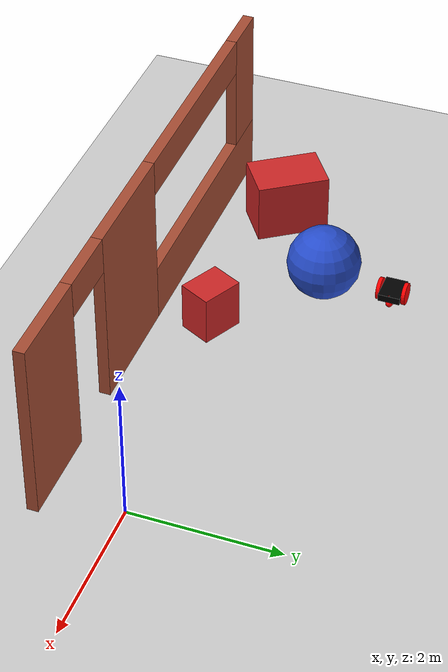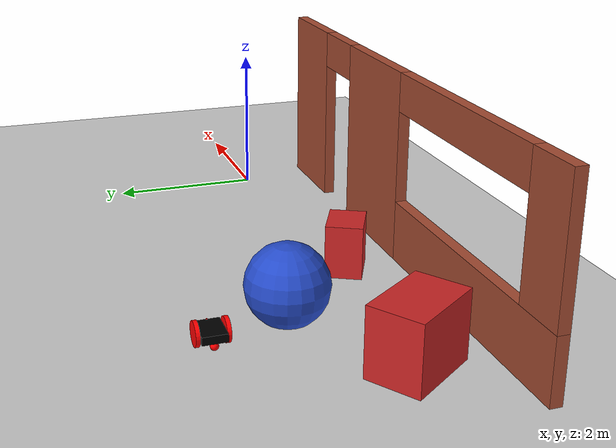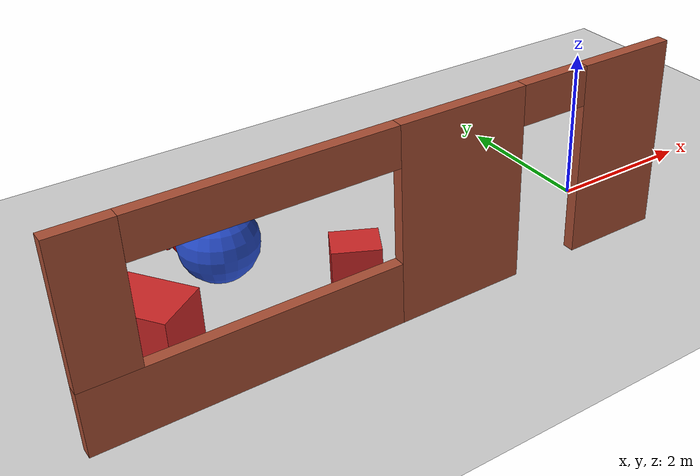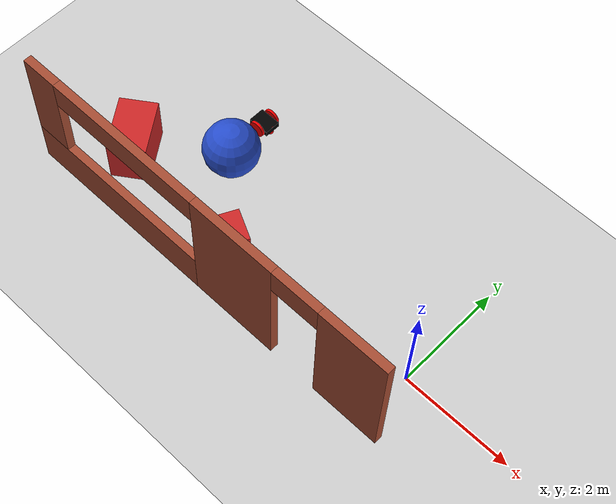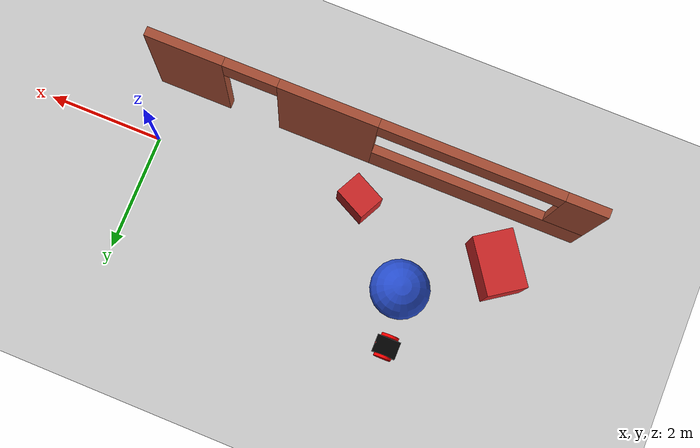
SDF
<sdf version="1.6">
 <world name="default">
  <model name="ground_plane">
   <static>1</static>
   <link name="link">
    <collision name="collision">
     <geometry><plane><normal>0 0 1</normal><size>100 100</size></plane></geometry>
     <surface>
      <contact><collide_bitmask>65535</collide_bitmask></contact>
      <friction><ode><mu>100</mu><mu2>50</mu2></ode></friction>
     </surface>
    </collision>
    <visual name="visual">
     <cast_shadows>0</cast_shadows>
     <geometry><plane><normal>0 0 1</normal><size>100 100</size></plane></geometry>
     <material>
      <script><uri>file://media/materials/scripts/gazebo.material</uri><name>Gazebo/Grey</name></script>
     </material>
    </visual>
   </link>
  </model>
  <model name="AssignmentBuilding_0">
   <link name="Wall_50">
    <pose>-2.70755 -0.616637 0 0 0 -3.14151</pose>
    <inertial>
     <mass>1</mass>
     <inertia><ixx>1</ixx><ixy>0</ixy><ixz>0</ixz><iyy>1</iyy><iyz>0</iyz><izz>1</izz></inertia>
    </inertial>
    <visual name="Wall_50_Visual_0">
     <pose>-3.10542 0 1.25 0 -0 0</pose>
     <geometry><box><size>1.28752 0.15 2.5</size></box></geometry>
     <material>
      <script><uri>file://media/materials/scripts/gazebo.material</uri><name>Gazebo/Bricks</name></script>
      <ambient>1 1 1 1</ambient>
      <shader type="pixel"><normal_map>__default__</normal_map></shader>
      <diffuse>1 1 1 1</diffuse>
      <specular>0.2 0.2 0.2 1</specular>
      <emissive>0 0 0 1</emissive>
     </material>
     <meta><layer>0</layer></meta>
    </visual>
    <visual name="Wall_50_Visual_1">
     <pose>-0.739689 0 1.25 0 -0 0</pose>
     <geometry><box><size>1.64394 0.15 2.5</size></box></geometry>
     <material>
      <script><uri>file://media/materials/scripts/gazebo.material</uri><name>Gazebo/Bricks</name></script>
      <ambient>1 1 1 1</ambient>
      <shader type="pixel"><normal_map>__default__</normal_map></shader>
      <diffuse>0.7 0.7 0.7 1</diffuse>
      <specular>0.01 0.01 0.01 1</specular>
      <emissive>0 0 0 1</emissive>
     </material>
     <meta><layer>0</layer></meta>
    </visual>
    <visual name="Wall_50_Visual_2">
     <pose>1.91573 0 0.4 0 -0 0</pose>
     <geometry><box><size>3.6669 0.15 0.8</size></box></geometry>
     <material>
      <script><uri>file://media/materials/scripts/gazebo.material</uri><name>Gazebo/Bricks</name></script>
      <ambient>1 1 1 1</ambient>
      <shader type="pixel"><normal_map>__default__</normal_map></shader>
      <diffuse>0.7 0.7 0.7 1</diffuse>
      <specular>0.01 0.01 0.01 1</specular>
      <emissive>0 0 0 1</emissive>
     </material>
     <meta><layer>0</layer></meta>
    </visual>
    <visual name="Wall_50_Visual_3">
     <pose>3.40754 0 1.65 0 -0 0</pose>
     <geometry><box><size>0.683277 0.15 1.7</size></box></geometry>
     <material>
      <script><uri>file://media/materials/scripts/gazebo.material</uri><name>Gazebo/Bricks</name></script>
      <ambient>1 1 1 1</ambient>
      <shader type="pixel"><normal_map>__default__</normal_map></shader>
      <diffuse>0.7 0.7 0.7 1</diffuse>
      <specular>0.01 0.01 0.01 1</specular>
      <emissive>0 0 0 1</emissive>
     </material>
     <meta><layer>0</layer></meta>
    </visual>
    <visual name="Wall_50_Visual_4">
     <pose>-2.01166 0 2.25 0 -0 0</pose>
     <geometry><box><size>0.9 0.15 0.5</size></box></geometry>
     <material>
      <script><uri>file://media/materials/scripts/gazebo.material</uri><name>Gazebo/Bricks</name></script>
      <ambient>1 1 1 1</ambient>
      <shader type="pixel"><normal_map>__default__</normal_map></shader>
      <diffuse>0.7 0.7 0.7 1</diffuse>
      <specular>0.01 0.01 0.01 1</specular>
      <emissive>0 0 0 1</emissive>
     </material>
     <meta><layer>0</layer></meta>
    </visual>
    <visual name="Wall_50_Visual_5">
     <pose>1.57409 0 2.25 0 -0 0</pose>
     <geometry><box><size>2.98362 0.15 0.5</size></box></geometry>
     <material>
      <script><uri>file://media/materials/scripts/gazebo.material</uri><name>Gazebo/Bricks</name></script>
      <ambient>1 1 1 1</ambient>
      <shader type="pixel"><normal_map>__default__</normal_map></shader>
      <diffuse>0.7 0.7 0.7 1</diffuse>
      <specular>0.01 0.01 0.01 1</specular>
      <emissive>0 0 0 1</emissive>
     </material>
     <meta><layer>0</layer></meta>
    </visual>
    <collision name="Wall_50_Collision_0">
     <pose>-3.10542 0 1.25 0 -0 0</pose>
     <geometry><box><size>1.28752 0.15 2.5</size></box></geometry>
     <surface>
      <friction>
       <ode><mu>1</mu><mu2>1</mu2><fdir1>0 0 0</fdir1><slip1>0</slip1><slip2>0</slip2></ode>
       <torsional>
        <coefficient>1</coefficient>
        <patch_radius>0</patch_radius>
        <surface_radius>0</surface_radius>
        <use_patch_radius>1</use_patch_radius>
        <ode><slip>0</slip></ode>
       </torsional>
      </friction>
      <bounce><restitution_coefficient>0</restitution_coefficient><threshold>1e+06</threshold></bounce>
      <contact>
       <collide_without_contact>0</collide_without_contact>
       <collide_without_contact_bitmask>1</collide_without_contact_bitmask>
       <collide_bitmask>1</collide_bitmask>
       <ode>
        <soft_cfm>0</soft_cfm>
        <soft_erp>0.2</soft_erp>
        <kp>1e+13</kp>
        <kd>1</kd>
        <max_vel>0.01</max_vel>
        <min_depth>0</min_depth>
       </ode>
       <bullet>
        <split_impulse>1</split_impulse>
        <split_impulse_penetration_threshold>-0.01</split_impulse_penetration_threshold>
        <soft_cfm>0</soft_cfm>
        <soft_erp>0.2</soft_erp>
        <kp>1e+13</kp>
        <kd>1</kd>
       </bullet>
      </contact>
     </surface>
    </collision>
    <collision name="Wall_50_Collision_1">
     <pose>-0.739689 0 1.25 0 -0 0</pose>
     <geometry><box><size>1.64394 0.15 2.5</size></box></geometry>
     <surface>
      <friction>
       <ode><mu>1</mu><mu2>1</mu2><fdir1>0 0 0</fdir1><slip1>0</slip1><slip2>0</slip2></ode>
       <torsional>
        <coefficient>1</coefficient>
        <patch_radius>0</patch_radius>
        <surface_radius>0</surface_radius>
        <use_patch_radius>1</use_patch_radius>
        <ode><slip>0</slip></ode>
       </torsional>
      </friction>
      <bounce><restitution_coefficient>0</restitution_coefficient><threshold>1e+06</threshold></bounce>
      <contact>
       <collide_without_contact>0</collide_without_contact>
       <collide_without_contact_bitmask>1</collide_without_contact_bitmask>
       <collide_bitmask>1</collide_bitmask>
       <ode>
        <soft_cfm>0</soft_cfm>
        <soft_erp>0.2</soft_erp>
        <kp>1e+13</kp>
        <kd>1</kd>
        <max_vel>0.01</max_vel>
        <min_depth>0</min_depth>
       </ode>
       <bullet>
        <split_impulse>1</split_impulse>
        <split_impulse_penetration_threshold>-0.01</split_impulse_penetration_threshold>
        <soft_cfm>0</soft_cfm>
        <soft_erp>0.2</soft_erp>
        <kp>1e+13</kp>
        <kd>1</kd>
       </bullet>
      </contact>
     </surface>
    </collision>
    <collision name="Wall_50_Collision_2">
     <pose>1.91573 0 0.4 0 -0 0</pose>
     <geometry><box><size>3.6669 0.15 0.8</size></box></geometry>
     <surface>
      <friction>
       <ode><mu>1</mu><mu2>1</mu2><fdir1>0 0 0</fdir1><slip1>0</slip1><slip2>0</slip2></ode>
       <torsional>
        <coefficient>1</coefficient>
        <patch_radius>0</patch_radius>
        <surface_radius>0</surface_radius>
        <use_patch_radius>1</use_patch_radius>
        <ode><slip>0</slip></ode>
       </torsional>
      </friction>
      <bounce><restitution_coefficient>0</restitution_coefficient><threshold>1e+06</threshold></bounce>
      <contact>
       <collide_without_contact>0</collide_without_contact>
       <collide_without_contact_bitmask>1</collide_without_contact_bitmask>
       <collide_bitmask>1</collide_bitmask>
       <ode>
        <soft_cfm>0</soft_cfm>
        <soft_erp>0.2</soft_erp>
        <kp>1e+13</kp>
        <kd>1</kd>
        <max_vel>0.01</max_vel>
        <min_depth>0</min_depth>
       </ode>
       <bullet>
        <split_impulse>1</split_impulse>
        <split_impulse_penetration_threshold>-0.01</split_impulse_penetration_threshold>
        <soft_cfm>0</soft_cfm>
        <soft_erp>0.2</soft_erp>
        <kp>1e+13</kp>
        <kd>1</kd>
       </bullet>
      </contact>
     </surface>
    </collision>
    <collision name="Wall_50_Collision_3">
     <pose>3.40754 0 1.65 0 -0 0</pose>
     <geometry><box><size>0.683277 0.15 1.7</size></box></geometry>
     <surface>
      <friction>
       <ode><mu>1</mu><mu2>1</mu2><fdir1>0 0 0</fdir1><slip1>0</slip1><slip2>0</slip2></ode>
       <torsional>
        <coefficient>1</coefficient>
        <patch_radius>0</patch_radius>
        <surface_radius>0</surface_radius>
        <use_patch_radius>1</use_patch_radius>
        <ode><slip>0</slip></ode>
       </torsional>
      </friction>
      <bounce><restitution_coefficient>0</restitution_coefficient><threshold>1e+06</threshold></bounce>
      <contact>
       <collide_without_contact>0</collide_without_contact>
       <collide_without_contact_bitmask>1</collide_without_contact_bitmask>
       <collide_bitmask>1</collide_bitmask>
       <ode>
        <soft_cfm>0</soft_cfm>
        <soft_erp>0.2</soft_erp>
        <kp>1e+13</kp>
        <kd>1</kd>
        <max_vel>0.01</max_vel>
        <min_depth>0</min_depth>
       </ode>
       <bullet>
        <split_impulse>1</split_impulse>
        <split_impulse_penetration_threshold>-0.01</split_impulse_penetration_threshold>
        <soft_cfm>0</soft_cfm>
        <soft_erp>0.2</soft_erp>
        <kp>1e+13</kp>
        <kd>1</kd>
       </bullet>
      </contact>
     </surface>
    </collision>
    <collision name="Wall_50_Collision_4">
     <pose>-2.01166 0 2.25 0 -0 0</pose>
     <geometry><box><size>0.9 0.15 0.5</size></box></geometry>
     <surface>
      <friction>
       <ode><mu>1</mu><mu2>1</mu2><fdir1>0 0 0</fdir1><slip1>0</slip1><slip2>0</slip2></ode>
       <torsional>
        <coefficient>1</coefficient>
        <patch_radius>0</patch_radius>
        <surface_radius>0</surface_radius>
        <use_patch_radius>1</use_patch_radius>
        <ode><slip>0</slip></ode>
       </torsional>
      </friction>
      <bounce><restitution_coefficient>0</restitution_coefficient><threshold>1e+06</threshold></bounce>
      <contact>
       <collide_without_contact>0</collide_without_contact>
       <collide_without_contact_bitmask>1</collide_without_contact_bitmask>
       <collide_bitmask>1</collide_bitmask>
       <ode>
        <soft_cfm>0</soft_cfm>
        <soft_erp>0.2</soft_erp>
        <kp>1e+13</kp>
        <kd>1</kd>
        <max_vel>0.01</max_vel>
        <min_depth>0</min_depth>
       </ode>
       <bullet>
        <split_impulse>1</split_impulse>
        <split_impulse_penetration_threshold>-0.01</split_impulse_penetration_threshold>
        <soft_cfm>0</soft_cfm>
        <soft_erp>0.2</soft_erp>
        <kp>1e+13</kp>
        <kd>1</kd>
       </bullet>
      </contact>
     </surface>
    </collision>
    <collision name="Wall_50_Collision_5">
     <pose>1.57409 0 2.25 0 -0 0</pose>
     <geometry><box><size>2.98362 0.15 0.5</size></box></geometry>
     <surface>
      <friction>
       <ode><mu>1</mu><mu2>1</mu2><fdir1>0 0 0</fdir1><slip1>0</slip1><slip2>0</slip2></ode>
       <torsional>
        <coefficient>1</coefficient>
        <patch_radius>0</patch_radius>
        <surface_radius>0</surface_radius>
        <use_patch_radius>1</use_patch_radius>
        <ode><slip>0</slip></ode>
       </torsional>
      </friction>
      <bounce><restitution_coefficient>0</restitution_coefficient><threshold>1e+06</threshold></bounce>
      <contact>
       <collide_without_contact>0</collide_without_contact>
       <collide_without_contact_bitmask>1</collide_without_contact_bitmask>
       <collide_bitmask>1</collide_bitmask>
       <ode>
        <soft_cfm>0</soft_cfm>
        <soft_erp>0.2</soft_erp>
        <kp>1e+13</kp>
        <kd>1</kd>
        <max_vel>0.01</max_vel>
        <min_depth>0</min_depth>
       </ode>
       <bullet>
        <split_impulse>1</split_impulse>
        <split_impulse_penetration_threshold>-0.01</split_impulse_penetration_threshold>
        <soft_cfm>0</soft_cfm>
        <soft_erp>0.2</soft_erp>
        <kp>1e+13</kp>
        <kd>1</kd>
       </bullet>
      </contact>
     </surface>
    </collision>
   </link>
   <static>1</static>
   <pose>-0.68157 -0.42903 0 0 -0 0</pose>
  </model>
  <model name="unit_box">
   <link name="link">
    <inertial>
     <mass>1</mass>
     <inertia>
      <ixx>0.166667</ixx>
      <ixy>0</ixy>
      <ixz>0</ixz>
      <iyy>0.166667</iyy>
      <iyz>0</iyz>
      <izz>0.166667</izz>
     </inertia>
    </inertial>
    <visual name="visual">
     <geometry><box><size>0.675313 1 0.84475</size></box></geometry>
     <material>
      <script><name>Gazebo/Red</name><uri>file://media/materials/scripts/gazebo.material</uri></script>
      <shader type="pixel"><normal_map>__default__</normal_map></shader>
      <ambient>1 0 0 1</ambient>
      <diffuse>1 0 0 1</diffuse>
      <specular>0.1 0.1 0.1 1</specular>
      <emissive>0 0 0 1</emissive>
     </material>
    </visual>
    <collision name="collision">
     <geometry><box><size>0.675313 1 0.84475</size></box></geometry>
     <surface>
      <friction>
       <ode><mu>1</mu><mu2>1</mu2><fdir1>0 0 0</fdir1><slip1>0</slip1><slip2>0</slip2></ode>
       <torsional>
        <coefficient>1</coefficient>
        <patch_radius>0</patch_radius>
        <surface_radius>0</surface_radius>
        <use_patch_radius>1</use_patch_radius>
        <ode><slip>0</slip></ode>
       </torsional>
      </friction>
      <bounce><restitution_coefficient>0</restitution_coefficient><threshold>1e+06</threshold></bounce>
      <contact>
       <collide_without_contact>0</collide_without_contact>
       <collide_without_contact_bitmask>1</collide_without_contact_bitmask>
       <collide_bitmask>1</collide_bitmask>
       <ode>
        <soft_cfm>0</soft_cfm>
        <soft_erp>0.2</soft_erp>
        <kp>1e+13</kp>
        <kd>1</kd>
        <max_vel>0.01</max_vel>
        <min_depth>0</min_depth>
       </ode>
       <bullet>
        <split_impulse>1</split_impulse>
        <split_impulse_penetration_threshold>-0.01</split_impulse_penetration_threshold>
        <soft_cfm>0</soft_cfm>
        <soft_erp>0.2</soft_erp>
        <kp>1e+13</kp>
        <kd>1</kd>
       </bullet>
      </contact>
     </surface>
    </collision>
   </link>
   <static>0</static>
   <pose>-6.05768 -0.06772 0.422375 0 -0 0.606648</pose>
  </model>
  <model name="unit_box_3_clone_2">
   <link name="link">
    <inertial>
     <mass>1</mass>
     <inertia>
      <ixx>0.166667</ixx>
      <ixy>0</ixy>
      <ixz>0</ixz>
      <iyy>0.166667</iyy>
      <iyz>0</iyz>
      <izz>0.166667</izz>
     </inertia>
    </inertial>
    <visual name="visual">
     <geometry><box><size>0.46783 0.587718 0.68729</size></box></geometry>
     <material>
      <script><name>Gazebo/Red</name><uri>file://media/materials/scripts/gazebo.material</uri></script>
      <shader type="pixel"><normal_map>__default__</normal_map></shader>
      <ambient>1 0 0 1</ambient>
      <diffuse>1 0 0 1</diffuse>
      <specular>0.1 0.1 0.1 1</specular>
      <emissive>0 0 0 1</emissive>
     </material>
    </visual>
    <collision name="collision">
     <geometry><box><size>0.46783 0.587718 0.68729</size></box></geometry>
     <surface>
      <friction>
       <ode><mu>1</mu><mu2>1</mu2><fdir1>0 0 0</fdir1><slip1>0</slip1><slip2>0</slip2></ode>
       <torsional>
        <coefficient>1</coefficient>
        <patch_radius>0</patch_radius>
        <surface_radius>0</surface_radius>
        <use_patch_radius>1</use_patch_radius>
        <ode><slip>0</slip></ode>
       </torsional>
      </friction>
      <bounce><restitution_coefficient>0</restitution_coefficient><threshold>1e+06</threshold></bounce>
      <contact>
       <collide_without_contact>0</collide_without_contact>
       <collide_without_contact_bitmask>1</collide_without_contact_bitmask>
       <collide_bitmask>1</collide_bitmask>
       <ode>
        <soft_cfm>0</soft_cfm>
        <soft_erp>0.2</soft_erp>
        <kp>1e+13</kp>
        <kd>1</kd>
        <max_vel>0.01</max_vel>
        <min_depth>0</min_depth>
       </ode>
       <bullet>
        <split_impulse>1</split_impulse>
        <split_impulse_penetration_threshold>-0.01</split_impulse_penetration_threshold>
        <soft_cfm>0</soft_cfm>
        <soft_erp>0.2</soft_erp>
        <kp>1e+13</kp>
        <kd>1</kd>
       </bullet>
      </contact>
     </surface>
    </collision>
   </link>
   <static>0</static>
   <pose>-3.56004 -0.262646 0.343645 0 -0 1.10302</pose>
  </model>
  <model name="Roomba">
   <static>0</static>
   <link name="chassis">
    <pose>0 0 0.15 0 -0 0</pose>
    <collision name="collision"><geometry><box><size>0.4 0.3 0.1</size></box></geometry></collision>
    <visual name="visual">
     <geometry><box><size>0.4 0.3 0.1</size></box></geometry>
     <material><ambient>0 0 0 0.5</ambient><diffuse>0 0 0 1</diffuse></material>
    </visual>
    <collision name="caster_collision_1">
     <pose>-0.15 0 -0.1 0 -0 0</pose>
     <geometry><sphere><radius>0.05</radius></sphere></geometry>
     <surface><friction><ode><mu>0</mu><mu2>0</mu2><slip1>1</slip1><slip2>1</slip2></ode></friction></surface>
    </collision>
    <visual name="caster_visual_1">
     <pose>-0.15 0 -0.1 0 -0 0</pose>
     <geometry><sphere><radius>0.05</radius></sphere></geometry>
     <material><ambient>1 0 0 0.5</ambient><diffuse>1 0 0 1</diffuse></material>
    </visual>
    <collision name="caster_collision_2">
     <pose>0.15 0 -0.1 0 -0 0</pose>
     <geometry><sphere><radius>0.05</radius></sphere></geometry>
     <surface><friction><ode><mu>0</mu><mu2>0</mu2><slip1>1</slip1><slip2>1</slip2></ode></friction></surface>
    </collision>
    <visual name="caster_visual_2">
     <pose>0.15 0 -0.1 0 -0 0</pose>
     <geometry><sphere><radius>0.05</radius></sphere></geometry>
     <material><ambient>1 0 0 0.5</ambient><diffuse>1 0 0 1</diffuse></material>
    </visual>
    <collision name="sensor_collision">
     <pose>0.19 0 0.055 0 -0 0</pose>
     <geometry><box><size>0.01 0.02 0.01</size></box></geometry>
    </collision>
    <visual name="sensor_visual">
     <pose>0.19 0 0.055 0 -0 0</pose>
     <geometry><box><size>0.01 0.02 0.01</size></box></geometry>
     <material><ambient>1 0 0 0.5</ambient><diffuse>1 0 0 1</diffuse></material>
    </visual>
    <sensor name="sensor" type="gpu_ray">
     <pose>0.2 0 0.055 0 -0 0</pose>
     <visualize>1</visualize>
     <update_rate>10</update_rate>
     <ray>
      <scan>
       <horizontal>
        <samples>720</samples>
        <resolution>1</resolution>
        <min_angle>-1.5708</min_angle>
        <max_angle>1.5708</max_angle>
       </horizontal>
      </scan>
      <range><min>0.05</min><max>15</max><resolution>0.02</resolution></range>
      <noise><type>gaussian</type><mean>0</mean><stddev>0.01</stddev></noise>
     </ray>
     <plugin name="gazebo_ros_head_hokuyo_controller" filename="libgazebo_ros_gpu_laser.so">
      <topicName>/Roomba/laser/scan</topicName>
      <frameName>chassis</frameName>
      <robotNamespace>roomba</robotNamespace>
     </plugin>
    </sensor>
    <inertial>
     <inertia><ixx>1</ixx><ixy>0</ixy><ixz>0</ixz><iyy>1</iyy><iyz>0</iyz><izz>1</izz></inertia>
     <mass>1</mass>
    </inertial>
   </link>
   <link name="left_wheel">
    <pose>0 0.175 0.15 -0 1.5707 1.5707</pose>
    <collision name="collision">
     <geometry><cylinder><radius>0.15</radius><length>0.05</length></cylinder></geometry>
    </collision>
    <visual name="visual">
     <geometry><cylinder><radius>0.15</radius><length>0.05</length></cylinder></geometry>
     <material><ambient>1 0 0 0.5</ambient><diffuse>1 0 0 1</diffuse></material>
    </visual>
    <inertial>
     <inertia><ixx>1</ixx><ixy>0</ixy><ixz>0</ixz><iyy>1</iyy><iyz>0</iyz><izz>1</izz></inertia>
     <mass>1</mass>
    </inertial>
   </link>
   <link name="right_wheel">
    <pose>0 -0.175 0.15 -0 1.5707 1.5707</pose>
    <collision name="collision">
     <geometry><cylinder><radius>0.15</radius><length>0.05</length></cylinder></geometry>
    </collision>
    <visual name="visual">
     <geometry><cylinder><radius>0.15</radius><length>0.05</length></cylinder></geometry>
     <material><ambient>1 0 0 0.5</ambient><diffuse>1 0 0 1</diffuse></material>
    </visual>
    <inertial>
     <inertia><ixx>1</ixx><ixy>0</ixy><ixz>0</ixz><iyy>1</iyy><iyz>0</iyz><izz>1</izz></inertia>
     <mass>1</mass>
    </inertial>
   </link>
   <joint name="left_wheel_hinge" type="revolute">
    <child>left_wheel</child>
    <parent>chassis</parent>
    <axis>
     <xyz>0 1 0</xyz>
     <use_parent_model_frame>1</use_parent_model_frame>
     <limit><lower>-1e+16</lower><upper>1e+16</upper></limit>
     <dynamics><spring_reference>0</spring_reference><spring_stiffness>0</spring_stiffness></dynamics>
    </axis>
   </joint>
   <joint name="right_wheel_hinge" type="revolute">
    <child>right_wheel</child>
    <parent>chassis</parent>
    <axis>
     <xyz>0 1 0</xyz>
     <use_parent_model_frame>1</use_parent_model_frame>
     <limit><lower>-1e+16</lower><upper>1e+16</upper></limit>
     <dynamics><spring_reference>0</spring_reference><spring_stiffness>0</spring_stiffness></dynamics>
    </axis>
   </joint>
   <plugin name="differential_drive_controller" filename="libgazebo_ros_diff_drive.so">
    <alwaysOn>1</alwaysOn>
    <updateRate>10</updateRate>
    <leftJoint>left_wheel_hinge</leftJoint>
    <rightJoint>right_wheel_hinge</rightJoint>
    <wheelSeparation>0.3</wheelSeparation>
    <wheelDiameter>0.3</wheelDiameter>
    <wheelTorque>1.5</wheelTorque>
    <commandTopic>cmd_vel</commandTopic>
    <odometryTopic>odom</odometryTopic>
    <odometryFrame>odom</odometryFrame>
    <robotBaseFrame>base_footprint</robotBaseFrame>
    <publishWheelTF>0</publishWheelTF>
    <publishOdomTF>1</publishOdomTF>
    <wheelAcceleration>0</wheelAcceleration>
    <odometrySource>1</odometrySource>
   </plugin>
   <pose>-4.88454 1.83731 0 0 -0 0</pose>
  </model>
  <model name="unit_sphere_0_0">
   <link name="link">
    <inertial>
     <mass>1</mass>
     <inertia><ixx>0.1</ixx><ixy>0</ixy><ixz>0</ixz><iyy>0.1</iyy><iyz>0</iyz><izz>0.1</izz></inertia>
    </inertial>
    <visual name="visual">
     <geometry><sphere><radius>0.5</radius></sphere></geometry>
     <material>
      <script><name>Gazebo/Blue</name><uri>file://media/materials/scripts/gazebo.material</uri></script>
      <shader type="pixel"><normal_map>__default__</normal_map></shader>
      <ambient>0 0 1 1</ambient>
      <diffuse>0 0 1 1</diffuse>
      <specular>0.1 0.1 0.1 1</specular>
      <emissive>0 0 0 1</emissive>
     </material>
    </visual>
    <collision name="collision">
     <geometry><sphere><radius>0.5</radius></sphere></geometry>
     <surface>
      <friction>
       <ode><mu>1</mu><mu2>1</mu2><fdir1>0 0 0</fdir1><slip1>0</slip1><slip2>0</slip2></ode>
       <torsional>
        <coefficient>1</coefficient>
        <patch_radius>0</patch_radius>
        <surface_radius>0</surface_radius>
        <use_patch_radius>1</use_patch_radius>
        <ode><slip>0</slip></ode>
       </torsional>
      </friction>
      <bounce><restitution_coefficient>0</restitution_coefficient><threshold>1e+06</threshold></bounce>
      <contact>
       <collide_without_contact>0</collide_without_contact>
       <collide_without_contact_bitmask>1</collide_without_contact_bitmask>
       <collide_bitmask>1</collide_bitmask>
       <ode>
        <soft_cfm>0</soft_cfm>
        <soft_erp>0.2</soft_erp>
        <kp>1e+13</kp>
        <kd>1</kd>
        <max_vel>0.01</max_vel>
        <min_depth>0</min_depth>
       </ode>
       <bullet>
        <split_impulse>1</split_impulse>
        <split_impulse_penetration_threshold>-0.01</split_impulse_penetration_threshold>
        <soft_cfm>0</soft_cfm>
        <soft_erp>0.2</soft_erp>
        <kp>1e+13</kp>
        <kd>1</kd>
       </bullet>
      </contact>
     </surface>
    </collision>
   </link>
   <static>0</static>
   <pose>-4.73459 0.90748 0.5 0 -0 0</pose>
  </model>
 </world>
</sdf>
